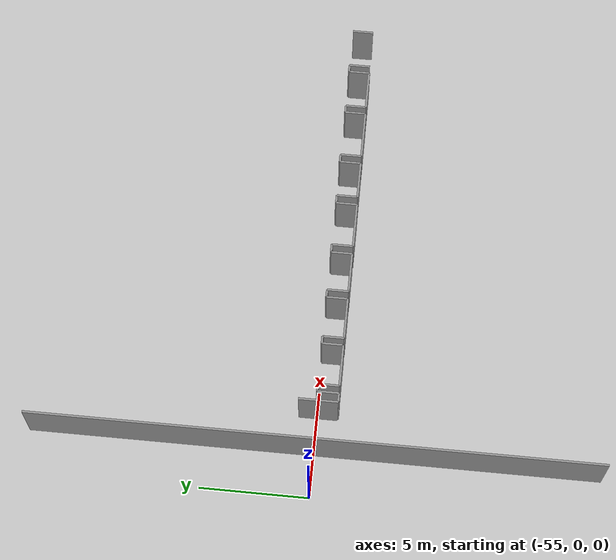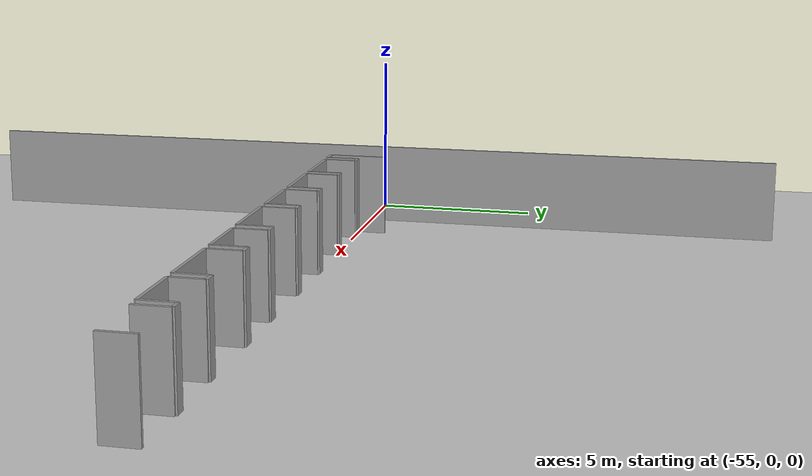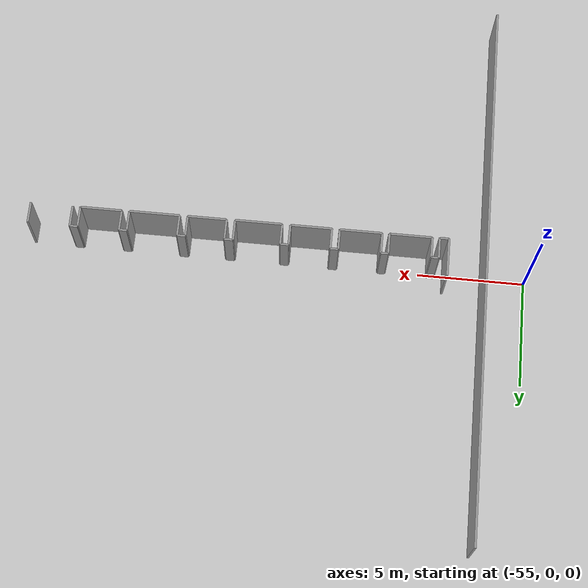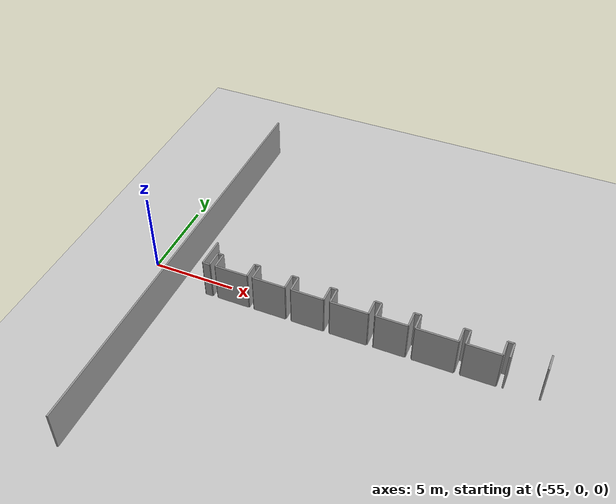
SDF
<sdf version="1.6">
 <world name="default">
  <model name="ground_plane">
   <static>1</static>
   <link name="link">
    <collision name="collision">
     <geometry><plane><normal>0 0 1</normal><size>100 100</size></plane></geometry>
     <surface><friction><ode><mu>100</mu><mu2>50</mu2></ode></friction></surface>
    </collision>
    <visual name="visual">
     <cast_shadows>0</cast_shadows>
     <geometry><plane><normal>0 0 1</normal><size>100 100</size></plane></geometry>
     <material>
      <script><uri>file://media/materials/scripts/gazebo.material</uri><name>Gazebo/Grey</name></script>
     </material>
    </visual>
   </link>
  </model>
  <model name="50010541">
   <static>1</static>
   <link name="Wall_47">
    <collision name="Wall_47_Collision">
     <geometry><box><size>0.984601322788 0.1 2.5</size></box></geometry>
     <pose>0.492300661394 0 1.25 0 0 0</pose>
    </collision>
    <visual name="Wall_47_Visual">
     <pose>0.492300661394 0 1.25 0 0 0</pose>
     <geometry><box><size>0.984601322788 0.1 2.5</size></box></geometry>
     <material>
      <script><uri>file://media/materials/scripts/gazebo.material</uri><name>Gazebo/Grey</name></script>
      <ambient>1 1 1 1</ambient>
     </material>
    </visual>
    <pose>21.1773069453 -13.0306069338 0 0 0 -1.57079632679</pose>
   </link>
   <link name="Wall_49">
    <collision name="Wall_49_Collision">
     <geometry><box><size>0.992472039912 0.1 2.5</size></box></geometry>
     <pose>0.496236019956 0 1.25 0 0 0</pose>
    </collision>
    <visual name="Wall_49_Visual">
     <pose>0.496236019956 0 1.25 0 0 0</pose>
     <geometry><box><size>0.992472039912 0.1 2.5</size></box></geometry>
     <material>
      <script><uri>file://media/materials/scripts/gazebo.material</uri><name>Gazebo/Grey</name></script>
      <ambient>1 1 1 1</ambient>
     </material>
    </visual>
    <pose>19.2191486931 -14.0152082566 0 0 0 1.57079632679</pose>
   </link>
   <link name="Wall_50">
    <collision name="Wall_50_Collision">
     <geometry><box><size>0.3623068818 0.1 2.5</size></box></geometry>
     <pose>0.1811534409 0 1.25 0 0 0</pose>
    </collision>
    <visual name="Wall_50_Visual">
     <pose>0.1811534409 0 1.25 0 0 0</pose>
     <geometry><box><size>0.3623068818 0.1 2.5</size></box></geometry>
     <material>
      <script><uri>file://media/materials/scripts/gazebo.material</uri><name>Gazebo/Grey</name></script>
      <ambient>1 1 1 1</ambient>
     </material>
    </visual>
    <pose>19.2191486931 -13.0227362167 0 0 0 3.14159265359</pose>
   </link>
   <link name="Wall_51">
    <collision name="Wall_51_Collision">
     <geometry><box><size>0.982316275881 0.1 2.5</size></box></geometry>
     <pose>0.491158137941 0 1.25 0 0 0</pose>
    </collision>
    <visual name="Wall_51_Visual">
     <pose>0.491158137941 0 1.25 0 0 0</pose>
     <geometry><box><size>0.982316275881 0.1 2.5</size></box></geometry>
     <material>
      <script><uri>file://media/materials/scripts/gazebo.material</uri><name>Gazebo/Grey</name></script>
      <ambient>1 1 1 1</ambient>
     </material>
    </visual>
    <pose>18.8568418113 -13.0227362167 0 0 0 -1.57079632679</pose>
   </link>
   <link name="Wall_52">
    <collision name="Wall_52_Collision">
     <geometry><box><size>1.9264214896 0.1 2.5</size></box></geometry>
     <pose>0.963210744798 0 1.25 0 0 0</pose>
    </collision>
    <visual name="Wall_52_Visual">
     <pose>0.963210744798 0 1.25 0 0 0</pose>
     <geometry><box><size>1.9264214896 0.1 2.5</size></box></geometry>
     <material>
      <script><uri>file://media/materials/scripts/gazebo.material</uri><name>Gazebo/Grey</name></script>
      <ambient>1 1 1 1</ambient>
     </material>
    </visual>
    <pose>18.8568418113 -14.0050524926 0 0 0 3.14159265359</pose>
   </link>
   <link name="Wall_53">
    <collision name="Wall_53_Collision">
     <geometry><box><size>0.965940106382 0.1 2.5</size></box></geometry>
     <pose>0.482970053191 0 1.25 0 0 0</pose>
    </collision>
    <visual name="Wall_53_Visual">
     <pose>0.482970053191 0 1.25 0 0 0</pose>
     <geometry><box><size>0.965940106382 0.1 2.5</size></box></geometry>
     <material>
      <script><uri>file://media/materials/scripts/gazebo.material</uri><name>Gazebo/Grey</name></script>
      <ambient>1 1 1 1</ambient>
     </material>
    </visual>
    <pose>16.9304203217 -14.0050524926 0 0 0 1.57079632679</pose>
   </link>
   <link name="Wall_54">
    <collision name="Wall_54_Collision">
     <geometry><box><size>0.356721211583 0.1 2.5</size></box></geometry>
     <pose>0.178360605791 0 1.25 0 0 0</pose>
    </collision>
    <visual name="Wall_54_Visual">
     <pose>0.178360605791 0 1.25 0 0 0</pose>
     <geometry><box><size>0.356721211583 0.1 2.5</size></box></geometry>
     <material>
      <script><uri>file://media/materials/scripts/gazebo.material</uri><name>Gazebo/Grey</name></script>
      <ambient>1 1 1 1</ambient>
     </material>
    </visual>
    <pose>16.9304203217 -13.0391123862 0 0 0 3.14159265359</pose>
   </link>
   <link name="Wall_55">
    <collision name="Wall_55_Collision">
     <geometry><box><size>0.971525776599 0.1 2.5</size></box></geometry>
     <pose>0.485762888299 0 1.25 0 0 0</pose>
    </collision>
    <visual name="Wall_55_Visual">
     <pose>0.485762888299 0 1.25 0 0 0</pose>
     <geometry><box><size>0.971525776599 0.1 2.5</size></box></geometry>
     <material>
      <script><uri>file://media/materials/scripts/gazebo.material</uri><name>Gazebo/Grey</name></script>
      <ambient>1 1 1 1</ambient>
     </material>
    </visual>
    <pose>16.5736991101 -13.0391123862 0 0 0 -1.57079632679</pose>
   </link>
   <link name="Wall_56">
    <collision name="Wall_56_Collision">
     <geometry><box><size>2.33798382695 0.1 2.5</size></box></geometry>
     <pose>1.16899191347 0 1.25 0 0 0</pose>
    </collision>
    <visual name="Wall_56_Visual">
     <pose>1.16899191347 0 1.25 0 0 0</pose>
     <geometry><box><size>2.33798382695 0.1 2.5</size></box></geometry>
     <material>
      <script><uri>file://media/materials/scripts/gazebo.material</uri><name>Gazebo/Grey</name></script>
      <ambient>1 1 1 1</ambient>
     </material>
    </visual>
    <pose>16.5736991101 -14.0106381628 0 0 0 3.14159265359</pose>
   </link>
   <link name="Wall_57">
    <collision name="Wall_57_Collision">
     <geometry><box><size>0.993487616315 0.1 2.5</size></box></geometry>
     <pose>0.496743808158 0 1.25 0 0 0</pose>
    </collision>
    <visual name="Wall_57_Visual">
     <pose>0.496743808158 0 1.25 0 0 0</pose>
     <geometry><box><size>0.993487616315 0.1 2.5</size></box></geometry>
     <material>
      <script><uri>file://media/materials/scripts/gazebo.material</uri><name>Gazebo/Grey</name></script>
      <ambient>1 1 1 1</ambient>
     </material>
    </visual>
    <pose>14.2357152832 -14.0106381628 0 0 0 1.57079632679</pose>
   </link>
   <link name="Wall_58">
    <collision name="Wall_58_Collision">
     <geometry><box><size>0.378683051299 0.1 2.5</size></box></geometry>
     <pose>0.18934152565 0 1.25 0 0 0</pose>
    </collision>
    <visual name="Wall_58_Visual">
     <pose>0.18934152565 0 1.25 0 0 0</pose>
     <geometry><box><size>0.378683051299 0.1 2.5</size></box></geometry>
     <material>
      <script><uri>file://media/materials/scripts/gazebo.material</uri><name>Gazebo/Grey</name></script>
      <ambient>1 1 1 1</ambient>
     </material>
    </visual>
    <pose>14.2357152832 -13.0171505465 0 0 0 3.14159265359</pose>
   </link>
   <link name="Wall_59">
    <collision name="Wall_59_Collision">
     <geometry><box><size>0.993487616315 0.1 2.5</size></box></geometry>
     <pose>0.496743808158 0 1.25 0 0 0</pose>
    </collision>
    <visual name="Wall_59_Visual">
     <pose>0.496743808158 0 1.25 0 0 0</pose>
     <geometry><box><size>0.993487616315 0.1 2.5</size></box></geometry>
     <material>
      <script><uri>file://media/materials/scripts/gazebo.material</uri><name>Gazebo/Grey</name></script>
      <ambient>1 1 1 1</ambient>
     </material>
    </visual>
    <pose>13.8570322319 -13.0171505465 0 0 0 -1.57079632679</pose>
   </link>
   <link name="Wall_60">
    <collision name="Wall_60_Collision">
     <geometry><box><size>1.80556789763 0.1 2.5</size></box></geometry>
     <pose>0.902783948815 0 1.25 0 0 0</pose>
    </collision>
    <visual name="Wall_60_Visual">
     <pose>0.902783948815 0 1.25 0 0 0</pose>
     <geometry><box><size>1.80556789763 0.1 2.5</size></box></geometry>
     <material>
      <script><uri>file://media/materials/scripts/gazebo.material</uri><name>Gazebo/Grey</name></script>
      <ambient>1 1 1 1</ambient>
     </material>
    </visual>
    <pose>13.8570322319 -14.0106381628 0 0 0 3.14159265359</pose>
   </link>
   <link name="Wall_61">
    <collision name="Wall_61_Collision">
     <geometry><box><size>0.976984499765 0.1 2.5</size></box></geometry>
     <pose>0.488492249883 0 1.25 0 0 0</pose>
    </collision>
    <visual name="Wall_61_Visual">
     <pose>0.488492249883 0 1.25 0 0 0</pose>
     <geometry><box><size>0.976984499765 0.1 2.5</size></box></geometry>
     <material>
      <script><uri>file://media/materials/scripts/gazebo.material</uri><name>Gazebo/Grey</name></script>
      <ambient>1 1 1 1</ambient>
     </material>
    </visual>
    <pose>12.0514643342 -14.0106381628 0 0 0 1.57079632679</pose>
   </link>
   <link name="Wall_62">
    <collision name="Wall_62_Collision">
     <geometry><box><size>0.395186167849 0.1 2.5</size></box></geometry>
     <pose>0.197593083925 0 1.25 0 0 0</pose>
    </collision>
    <visual name="Wall_62_Visual">
     <pose>0.197593083925 0 1.25 0 0 0</pose>
     <geometry><box><size>0.395186167849 0.1 2.5</size></box></geometry>
     <material>
      <script><uri>file://media/materials/scripts/gazebo.material</uri><name>Gazebo/Grey</name></script>
      <ambient>1 1 1 1</ambient>
     </material>
    </visual>
    <pose>12.0514643342 -13.0336536631 0 0 0 3.14159265359</pose>
   </link>
   <link name="Wall_63">
    <collision name="Wall_63_Collision">
     <geometry><box><size>0.987901946098 0.1 2.5</size></box></geometry>
     <pose>0.493950973049 0 1.25 0 0 0</pose>
    </collision>
    <visual name="Wall_63_Visual">
     <pose>0.493950973049 0 1.25 0 0 0</pose>
     <geometry><box><size>0.987901946098 0.1 2.5</size></box></geometry>
     <material>
      <script><uri>file://media/materials/scripts/gazebo.material</uri><name>Gazebo/Grey</name></script>
      <ambient>1 1 1 1</ambient>
     </material>
    </visual>
    <pose>11.6562781664 -13.0336536631 0 0 0 -1.57079632679</pose>
   </link>
   <link name="Wall_64">
    <collision name="Wall_64_Collision">
     <geometry><box><size>2.17891917281 0.1 2.5</size></box></geometry>
     <pose>1.08945958641 0 1.25 0 0 0</pose>
    </collision>
    <visual name="Wall_64_Visual">
     <pose>1.08945958641 0 1.25 0 0 0</pose>
     <geometry><box><size>2.17891917281 0.1 2.5</size></box></geometry>
     <material>
      <script><uri>file://media/materials/scripts/gazebo.material</uri><name>Gazebo/Grey</name></script>
      <ambient>1 1 1 1</ambient>
     </material>
    </visual>
    <pose>11.6562781664 -14.0215556092 0 0 0 3.14159265359</pose>
   </link>
   <link name="Wall_65">
    <collision name="Wall_65_Collision">
     <geometry><box><size>0.993360669265 0.1 2.5</size></box></geometry>
     <pose>0.496680334632 0 1.25 0 0 0</pose>
    </collision>
    <visual name="Wall_65_Visual">
     <pose>0.496680334632 0 1.25 0 0 0</pose>
     <geometry><box><size>0.993360669265 0.1 2.5</size></box></geometry>
     <material>
      <script><uri>file://media/materials/scripts/gazebo.material</uri><name>Gazebo/Grey</name></script>
      <ambient>1 1 1 1</ambient>
     </material>
    </visual>
    <pose>9.47735899356 -14.0215556092 0 0 0 1.57079632679</pose>
   </link>
   <link name="Wall_66">
    <collision name="Wall_66_Collision">
     <geometry><box><size>0.384141774466 0.1 2.5</size></box></geometry>
     <pose>0.192070887233 0 1.25 0 0 0</pose>
    </collision>
    <visual name="Wall_66_Visual">
     <pose>0.192070887233 0 1.25 0 0 0</pose>
     <geometry><box><size>0.384141774466 0.1 2.5</size></box></geometry>
     <material>
      <script><uri>file://media/materials/scripts/gazebo.material</uri><name>Gazebo/Grey</name></script>
      <ambient>1 1 1 1</ambient>
     </material>
    </visual>
    <pose>9.47735899356 -13.0281949399 0 0 0 3.14159265359</pose>
   </link>
   <link name="Wall_67">
    <collision name="Wall_67_Collision">
     <geometry><box><size>0.982443222932 0.1 2.5</size></box></geometry>
     <pose>0.491221611466 0 1.25 0 0 0</pose>
    </collision>
    <visual name="Wall_67_Visual">
     <pose>0.491221611466 0 1.25 0 0 0</pose>
     <geometry><box><size>0.982443222932 0.1 2.5</size></box></geometry>
     <material>
      <script><uri>file://media/materials/scripts/gazebo.material</uri><name>Gazebo/Grey</name></script>
      <ambient>1 1 1 1</ambient>
     </material>
    </visual>
    <pose>9.0932172191 -13.0281949399 0 0 0 -1.57079632679</pose>
   </link>
   <link name="Wall_68">
    <collision name="Wall_68_Collision">
     <geometry><box><size>1.91537709621 0.1 2.5</size></box></geometry>
     <pose>0.957688548107 0 1.25 0 0 0</pose>
    </collision>
    <visual name="Wall_68_Visual">
     <pose>0.957688548107 0 1.25 0 0 0</pose>
     <geometry><box><size>1.91537709621 0.1 2.5</size></box></geometry>
     <material>
      <script><uri>file://media/materials/scripts/gazebo.material</uri><name>Gazebo/Grey</name></script>
      <ambient>1 1 1 1</ambient>
     </material>
    </visual>
    <pose>9.0932172191 -14.0106381628 0 0 0 3.14159265359</pose>
   </link>
   <link name="Wall_69">
    <collision name="Wall_69_Collision">
     <geometry><box><size>0.987901946098 0.1 2.5</size></box></geometry>
     <pose>0.493950973049 0 1.25 0 0 0</pose>
    </collision>
    <visual name="Wall_69_Visual">
     <pose>0.493950973049 0 1.25 0 0 0</pose>
     <geometry><box><size>0.987901946098 0.1 2.5</size></box></geometry>
     <material>
      <script><uri>file://media/materials/scripts/gazebo.material</uri><name>Gazebo/Grey</name></script>
      <ambient>1 1 1 1</ambient>
     </material>
    </visual>
    <pose>7.17784012288 -14.0106381628 0 0 0 1.57079632679</pose>
   </link>
   <link name="Wall_70">
    <collision name="Wall_70_Collision">
     <geometry><box><size>0.367765604966 0.1 2.5</size></box></geometry>
     <pose>0.183882802483 0 1.25 0 0 0</pose>
    </collision>
    <visual name="Wall_70_Visual">
     <pose>0.183882802483 0 1.25 0 0 0</pose>
     <geometry><box><size>0.367765604966 0.1 2.5</size></box></geometry>
     <material>
      <script><uri>file://media/materials/scripts/gazebo.material</uri><name>Gazebo/Grey</name></script>
      <ambient>1 1 1 1</ambient>
     </material>
    </visual>
    <pose>7.17784012288 -13.0227362167 0 0 0 3.14159265359</pose>
   </link>
   <link name="Wall_71">
    <collision name="Wall_71_Collision">
     <geometry><box><size>0.982316275881 0.1 2.5</size></box></geometry>
     <pose>0.491158137941 0 1.25 0 0 0</pose>
    </collision>
    <visual name="Wall_71_Visual">
     <pose>0.491158137941 0 1.25 0 0 0</pose>
     <geometry><box><size>0.982316275881 0.1 2.5</size></box></geometry>
     <material>
      <script><uri>file://media/materials/scripts/gazebo.material</uri><name>Gazebo/Grey</name></script>
      <ambient>1 1 1 1</ambient>
     </material>
    </visual>
    <pose>6.81007451792 -13.0227362167 0 0 0 -1.57079632679</pose>
   </link>
   <link name="Wall_72">
    <collision name="Wall_72_Collision">
     <geometry><box><size>1.95384205248 0.1 2.5</size></box></geometry>
     <pose>0.97692102624 0 1.25 0 0 0</pose>
    </collision>
    <visual name="Wall_72_Visual">
     <pose>0.97692102624 0 1.25 0 0 0</pose>
     <geometry><box><size>1.95384205248 0.1 2.5</size></box></geometry>
     <material>
      <script><uri>file://media/materials/scripts/gazebo.material</uri><name>Gazebo/Grey</name></script>
      <ambient>1 1 1 1</ambient>
     </material>
    </visual>
    <pose>6.81007451792 -14.0050524926 0 0 0 3.14159265359</pose>
   </link>
   <link name="Wall_73">
    <collision name="Wall_73_Collision">
     <geometry><box><size>0.982316275881 0.1 2.5</size></box></geometry>
     <pose>0.491158137941 0 1.25 0 0 0</pose>
    </collision>
    <visual name="Wall_73_Visual">
     <pose>0.491158137941 0 1.25 0 0 0</pose>
     <geometry><box><size>0.982316275881 0.1 2.5</size></box></geometry>
     <material>
      <script><uri>file://media/materials/scripts/gazebo.material</uri><name>Gazebo/Grey</name></script>
      <ambient>1 1 1 1</ambient>
     </material>
    </visual>
    <pose>4.85623246544 -14.0050524926 0 0 0 1.57079632679</pose>
   </link>
   <link name="Wall_74">
    <collision name="Wall_74_Collision">
     <geometry><box><size>0.334759371866 0.1 2.5</size></box></geometry>
     <pose>0.167379685933 0 1.25 0 0 0</pose>
    </collision>
    <visual name="Wall_74_Visual">
     <pose>0.167379685933 0 1.25 0 0 0</pose>
     <geometry><box><size>0.334759371866 0.1 2.5</size></box></geometry>
     <material>
      <script><uri>file://media/materials/scripts/gazebo.material</uri><name>Gazebo/Grey</name></script>
      <ambient>1 1 1 1</ambient>
     </material>
    </visual>
    <pose>4.85623246544 -13.0227362167 0 0 0 3.14159265359</pose>
   </link>
   <link name="Wall_75">
    <collision name="Wall_75_Collision">
     <geometry><box><size>0.982316275881 0.1 2.5</size></box></geometry>
     <pose>0.491158137941 0 1.25 0 0 0</pose>
    </collision>
    <visual name="Wall_75_Visual">
     <pose>0.491158137941 0 1.25 0 0 0</pose>
     <geometry><box><size>0.982316275881 0.1 2.5</size></box></geometry>
     <material>
      <script><uri>file://media/materials/scripts/gazebo.material</uri><name>Gazebo/Grey</name></script>
      <ambient>1 1 1 1</ambient>
     </material>
    </visual>
    <pose>4.52147309357 -13.0227362167 0 0 0 -1.57079632679</pose>
   </link>
   <link name="Wall_76">
    <collision name="Wall_76_Collision">
     <geometry><box><size>1.97021822198 0.1 2.5</size></box></geometry>
     <pose>0.98510911099 0 1.25 0 0 0</pose>
    </collision>
    <visual name="Wall_76_Visual">
     <pose>0.98510911099 0 1.25 0 0 0</pose>
     <geometry><box><size>1.97021822198 0.1 2.5</size></box></geometry>
     <material>
      <script><uri>file://media/materials/scripts/gazebo.material</uri><name>Gazebo/Grey</name></script>
      <ambient>1 1 1 1</ambient>
     </material>
    </visual>
    <pose>4.52147309357 -14.0050524926 0 0 0 3.14159265359</pose>
   </link>
   <link name="Wall_77">
    <collision name="Wall_77_Collision">
     <geometry><box><size>0.976857552715 0.1 2.5</size></box></geometry>
     <pose>0.488428776357 0 1.25 0 0 0</pose>
    </collision>
    <visual name="Wall_77_Visual">
     <pose>0.488428776357 0 1.25 0 0 0</pose>
     <geometry><box><size>0.976857552715 0.1 2.5</size></box></geometry>
     <material>
      <script><uri>file://media/materials/scripts/gazebo.material</uri><name>Gazebo/Grey</name></script>
      <ambient>1 1 1 1</ambient>
     </material>
    </visual>
    <pose>2.55125487159 -14.0050524926 0 0 0 1.57079632679</pose>
   </link>
   <link name="Wall_78">
    <collision name="Wall_78_Collision">
     <geometry><box><size>0.34580376525 0.1 2.5</size></box></geometry>
     <pose>0.172901882625 0 1.25 0 0 0</pose>
    </collision>
    <visual name="Wall_78_Visual">
     <pose>0.172901882625 0 1.25 0 0 0</pose>
     <geometry><box><size>0.34580376525 0.1 2.5</size></box></geometry>
     <material>
      <script><uri>file://media/materials/scripts/gazebo.material</uri><name>Gazebo/Grey</name></script>
      <ambient>1 1 1 1</ambient>
     </material>
    </visual>
    <pose>2.55125487159 -13.0281949399 0 0 0 3.14159265359</pose>
   </link>
   <link name="Wall_79">
    <collision name="Wall_79_Collision">
     <geometry><box><size>0.987901946098 0.1 2.5</size></box></geometry>
     <pose>0.493950973049 0 1.25 0 0 0</pose>
    </collision>
    <visual name="Wall_79_Visual">
     <pose>0.493950973049 0 1.25 0 0 0</pose>
     <geometry><box><size>0.987901946098 0.1 2.5</size></box></geometry>
     <material>
      <script><uri>file://media/materials/scripts/gazebo.material</uri><name>Gazebo/Grey</name></script>
      <ambient>1 1 1 1</ambient>
     </material>
    </visual>
    <pose>2.20545110634 -13.0281949399 0 0 0 -1.57079632679</pose>
   </link>
   <link name="Wall_80">
    <collision name="Wall_80_Collision">
     <geometry><box><size>0.422606730733 0.1 2.5</size></box></geometry>
     <pose>0.211303365366 0 1.25 0 0 0</pose>
    </collision>
    <visual name="Wall_80_Visual">
     <pose>0.211303365366 0 1.25 0 0 0</pose>
     <geometry><box><size>0.422606730733 0.1 2.5</size></box></geometry>
     <material>
      <script><uri>file://media/materials/scripts/gazebo.material</uri><name>Gazebo/Grey</name></script>
      <ambient>1 1 1 1</ambient>
     </material>
    </visual>
    <pose>2.20545110634 -14.016096886 0 0 0 3.14159265359</pose>
   </link>
   <link name="Wall_81">
    <collision name="Wall_81_Collision">
     <geometry><box><size>1.7956660277 0.1 2.5</size></box></geometry>
     <pose>0.89783301385 0 1.25 0 0 0</pose>
    </collision>
    <visual name="Wall_81_Visual">
     <pose>0.89783301385 0 1.25 0 0 0</pose>
     <geometry><box><size>1.7956660277 0.1 2.5</size></box></geometry>
     <material>
      <script><uri>file://media/materials/scripts/gazebo.material</uri><name>Gazebo/Grey</name></script>
      <ambient>1 1 1 1</ambient>
     </material>
    </visual>
    <pose>1.78284437561 -14.016096886 0 0 0 1.57079632679</pose>
   </link>
   <link name="Wall_424">
    <collision name="Wall_424_Collision">
     <geometry><box><size>26.1612481434 0.1 2.5</size></box></geometry>
     <pose>13.0806240717 0 1.25 0 0 0</pose>
    </collision>
    <visual name="Wall_424_Visual">
     <pose>13.0806240717 0 1.25 0 0 0</pose>
     <geometry><box><size>26.1612481434 0.1 2.5</size></box></geometry>
     <material>
      <script><uri>file://media/materials/scripts/gazebo.material</uri><name>Gazebo/Grey</name></script>
      <ambient>1 1 1 1</ambient>
     </material>
    </visual>
    <pose>0.0 -26.1612481434 0 0 0 1.57079632679</pose>
   </link>
   <pose>-52.95 13.0612481434 0 0 0 0</pose>
  </model>
 </world>
</sdf>
